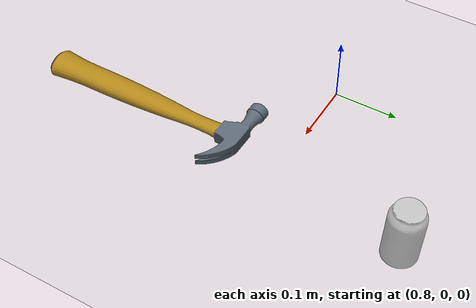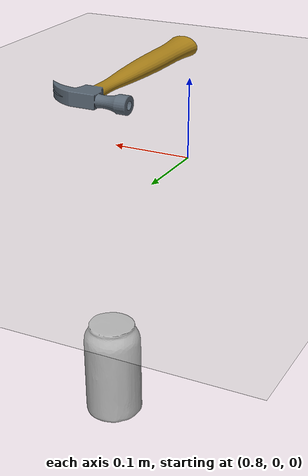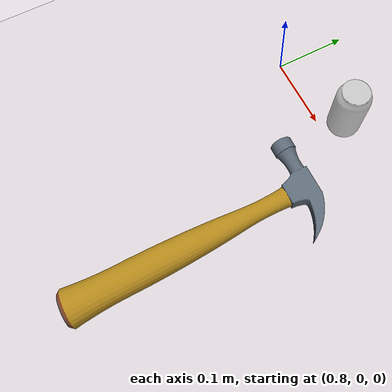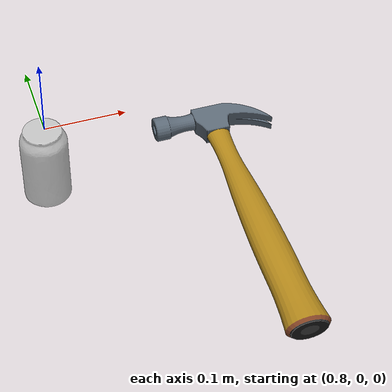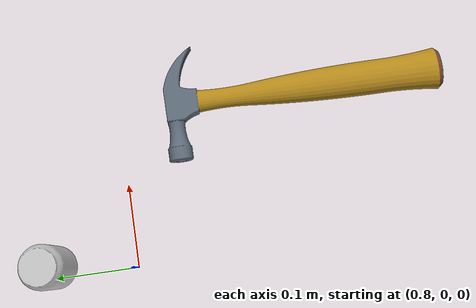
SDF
<sdf version="1.5">
 <world name="default">
  <model name="ground_plane">
   <static>1</static>
   <link name="link">
    <collision name="collision">
     <geometry><plane><normal>0 0 1</normal><size>100 100</size></plane></geometry>
     <surface><friction><ode><mu>100</mu><mu2>50</mu2></ode></friction></surface>
    </collision>
    <visual name="visual">
     <cast_shadows>0</cast_shadows>
     <geometry><plane><normal>0 0 1</normal><size>100 100</size></plane></geometry>
     <material>
      <script><uri>file://media/materials/scripts/gazebo.material</uri><name>Gazebo/Grey</name></script>
     </material>
    </visual>
   </link>
  </model>
  <light name="sun" type="directional">
   <pose>0 0 10 0 -0 0</pose>
   <diffuse>0.8 0.8 0.8 1</diffuse>
   <specular>0.2 0.2 0.2 1</specular>
   <attenuation>
    <range>1000</range>
    <constant>0.9</constant>
    <linear>0.01</linear>
    <quadratic>0.001</quadratic>
   </attenuation>
   <direction>-0.5 0.1 -0.9</direction>
  </light>
  <physics name="default_physics" default="0" type="ode">
   <max_step_size>0.001</max_step_size>
   <real_time_factor>1</real_time_factor>
   <real_time_update_rate>1000</real_time_update_rate>
   <gravity>0 0 -9.8</gravity>
   <magnetic_field>5.5645e-06 2.28758e-05 -4.23884e-05</magnetic_field>
  </physics>
  <scene><ambient>0.4 0.4 0.4 1</ambient><background>0.7 0.7 0.7 1</background><shadows>1</shadows></scene>
  <spherical_coordinates>
   <surface_model>EARTH_WGS84</surface_model>
   <latitude_deg>0</latitude_deg>
   <longitude_deg>0</longitude_deg>
   <elevation>0</elevation>
   <heading_deg>0</heading_deg>
  </spherical_coordinates>
  <model name="coke_can_0">
   <link name="link">
    <inertial>
     <pose>-0.01 -0.012 0.15 0 -0 0</pose>
     <mass>0.39</mass>
     <inertia><ixx>0.00058</ixx><ixy>0</ixy><ixz>0</ixz><iyy>0.00058</iyy><iyz>0</iyz><izz>0.00019</izz></inertia>
    </inertial>
    <collision name="collision">
     <pose>0 0 -0.46 0 -0 0</pose>
     <geometry><mesh><uri>model://coke_can/meshes/coke_can.dae</uri></mesh></geometry>
     <surface>
      <friction><ode><mu>1</mu><mu2>1</mu2></ode></friction>
      <contact><ode><kp>1e+07</kp><kd>1</kd><min_depth>0.001</min_depth><max_vel>0.1</max_vel></ode></contact>
     </surface>
    </collision>
    <visual name="visual">
     <pose>0 0 -0.46 0 -0 0</pose>
     <geometry><mesh><uri>model://coke_can/meshes/coke_can.dae</uri></mesh></geometry>
    </visual>
   </link>
   <pose>0.827664 0.168096 -0.004861 -0.042123 0.000328 0.000902</pose>
  </model>
  <model name="hammer">
   <static>1</static>
   <link name="link">
    <collision name="collision">
     <geometry><mesh><uri>model://hammer/meshes/hammer.dae</uri></mesh></geometry>
    </collision>
    <visual name="visual"><geometry><mesh><uri>model://hammer/meshes/hammer.dae</uri></mesh></geometry></visual>
   </link>
   <pose>0.97479 -0.152346 0.030067 0 -0 0</pose>
  </model>
 </world>
</sdf>
